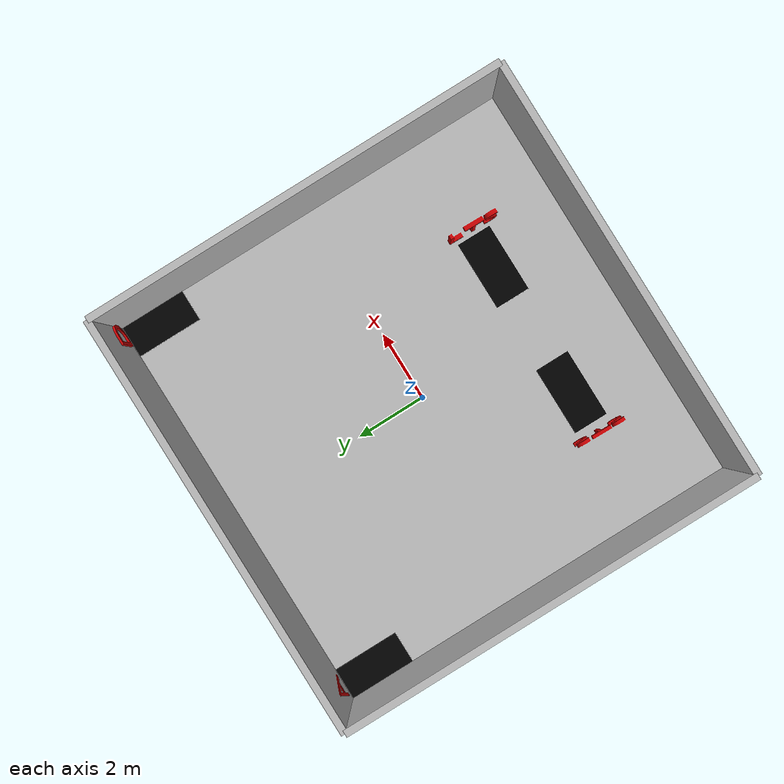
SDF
<sdf version="1.7">
 <world name="rumros_warehouse">
  <physics name="1ms" type="ignored">
   <max_step_size>0.001</max_step_size>
   <real_time_factor>1.0</real_time_factor>
  </physics>
  <plugin name="ignition::gazebo::systems::Physics" filename="libignition-gazebo-physics-system.so"/>
  <plugin name="ignition::gazebo::systems::UserCommands" filename="libignition-gazebo-user-commands-system.so"/>
  <plugin name="ignition::gazebo::systems::SceneBroadcaster" filename="libignition-gazebo-scene-broadcaster-system.so"/>
  <plugin name="ignition::gazebo::systems::Imu" filename="ignition-gazebo-imu-system"/>
  <plugin name="ignition::gazebo::systems::Sensors" filename="ignition-gazebo-sensors-system">
   <render_engine>ogre2</render_engine>
  </plugin>
  <include><uri>https://fuel.gazebosim.org/1.0/OpenRobotics/models/Sun</uri></include>
  <include><name>floor</name><uri>model://floor</uri><pose>0 0 -0.1 0 0 0</pose><static>true</static></include>
  <include><name>wall1</name><uri>model://wall</uri><pose>-6 0 -0.1 0 0 0</pose></include>
  <include><name>wall2</name><uri>model://wall</uri><pose>6 0 -0.1 0 0 0</pose></include>
  <include><name>wall3</name><uri>model://wall</uri><pose>0 6 -0.1 0 0 1.57079632679</pose></include>
  <include><name>wall4</name><uri>model://wall</uri><pose>0 -6 -0.1 0 0 1.57079632679</pose></include>
 </world>
</sdf>

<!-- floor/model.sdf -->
<sdf version="1.6">
  <model name="floor">
    <pose>0 0 0 0 0 0</pose>
    <static>1</static>
    <link name="link">
      <inertial>
        <mass>1</mass>
      </inertial>
      <collision name="collision">
        <geometry>
          <plane>
            <size>12 12</size>
          </plane>
        </geometry>
      </collision>
      <visual name="visual">
        <pose>0 0 0 0 0 0</pose>
        <geometry>
          <mesh>
            <uri>model://floor/meshes/floor.dae</uri>
            <scale>1 1 1</scale>
          </mesh>
        </geometry>
      </visual>
    </link>
  </model>
</sdf>

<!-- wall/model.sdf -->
<sdf version="1.6">
  <model name="floor">
    <pose>0 0 0 0 0 0</pose>
    <static>1</static>
    <link name="link">
      <inertial>
        <mass>12</mass>
      </inertial>
      <collision name="collision">
        <geometry>
          <box>
            <size>0.2 12 4</size>
          </box>
        </geometry>
      </collision>
      <visual name="visual">
        <pose>0 0 0 0 0 0</pose>
        <geometry>
          <mesh>
            <uri>model://wall/meshes/wall.dae</uri>
            <scale>1 1 1</scale>
          </mesh>
        </geometry>
      </visual>
    </link>
  </model>
</sdf>
